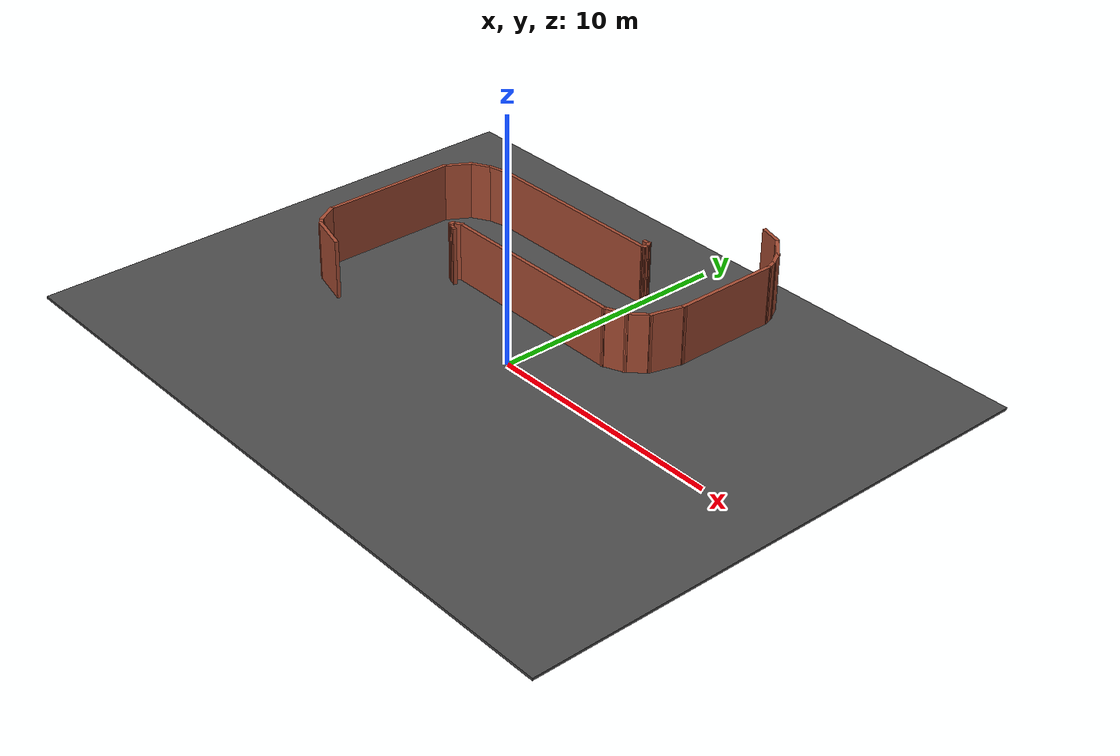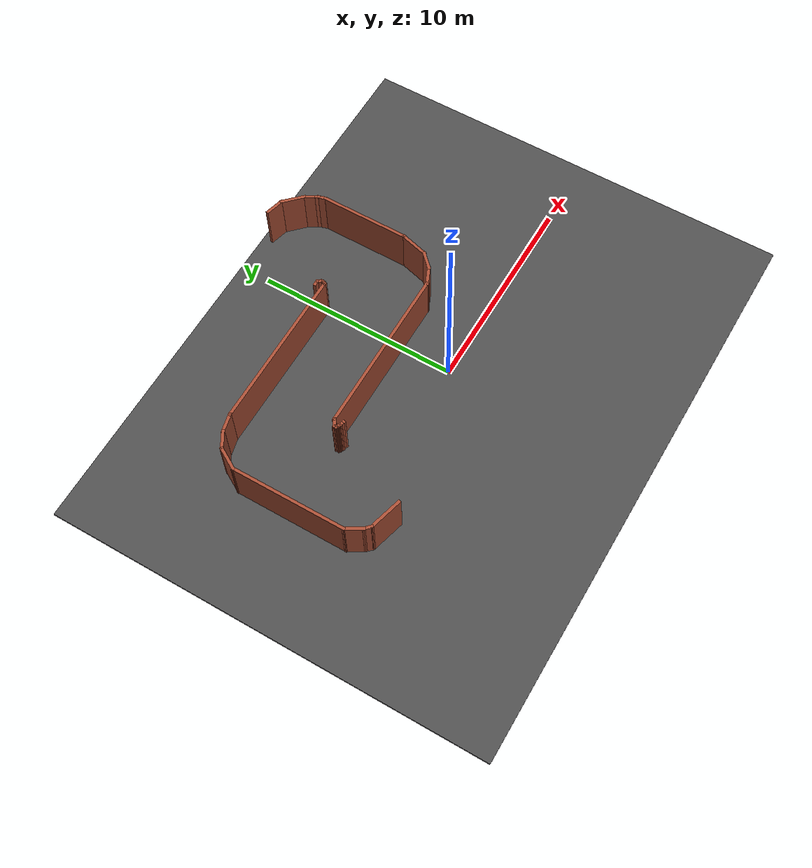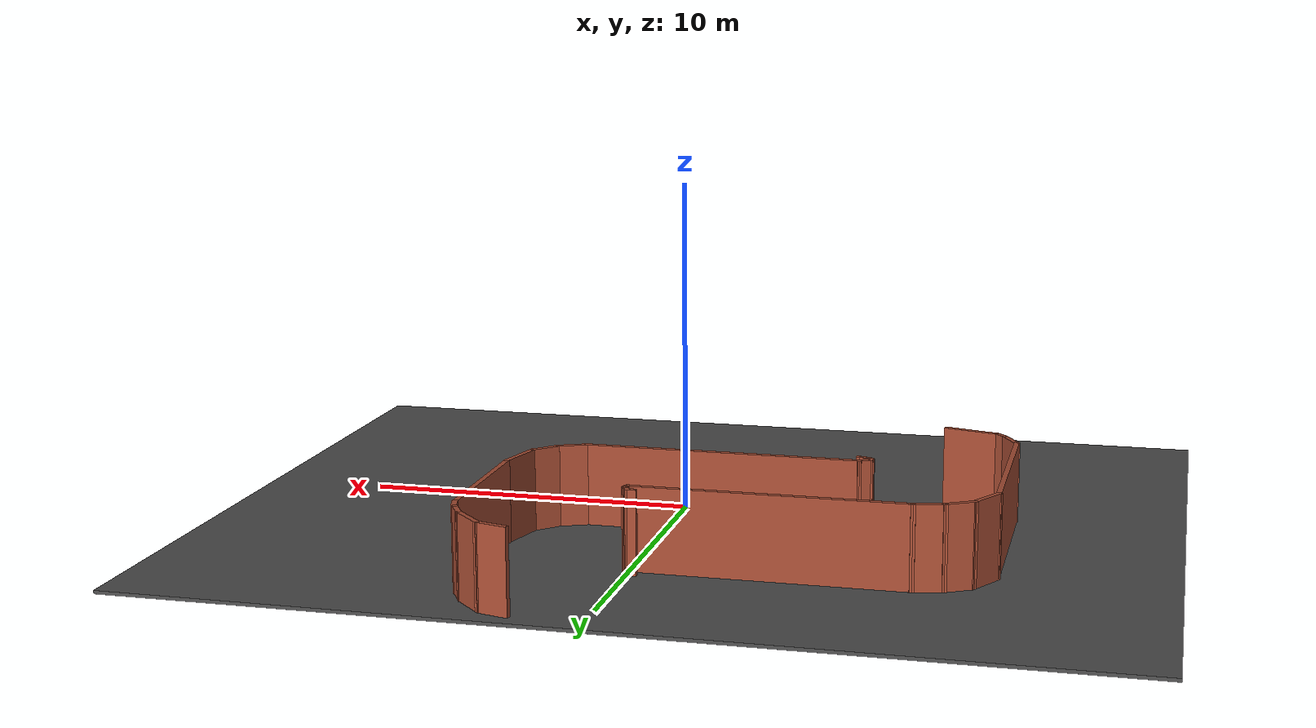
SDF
<sdf version="1.7">
 <world name="default">
  <model name="asphalt_plane">
   <static>1</static>
   <link name="link">
    <collision name="collision"><geometry><box><size>28.54 22.04 0.1</size></box></geometry></collision>
    <visual name="visual">
     <cast_shadows>0</cast_shadows>
     <geometry><box><size>28.54 22.04 0.1</size></box></geometry>
     <material>
      <script>
       <uri>model://asphalt_plane/materials/scripts</uri>
       <uri>model://asphalt_plane/materials/textures</uri>
       <name>vrc/asphalt</name>
      </script>
     </material>
    </visual>
   </link>
   <pose>-0.719505 0.551979 0 0 -0 0</pose>
  </model>
  <model name="Untitled_7">
   <pose>-2.94452 4.58094 0 0 -0 0</pose>
   <link name="Wall_0">
    <collision name="Wall_0_Collision">
     <geometry><box><size>8 0.15 2.5</size></box></geometry>
     <pose>0 0 1.25 0 -0 0</pose>
    </collision>
    <visual name="Wall_0_Visual">
     <pose>0 0 1.25 0 -0 0</pose>
     <geometry><box><size>8 0.15 2.5</size></box></geometry>
     <material>
      <script><uri>file://media/materials/scripts/gazebo.material</uri><name>Gazebo/Bricks</name></script>
      <ambient>1 1 1 1</ambient>
     </material>
     <meta><layer>0</layer></meta>
    </visual>
    <pose>-0.98603 2.05748 0 0 -0 0</pose>
   </link>
   <link name="Wall_10">
    <collision name="Wall_10_Collision">
     <geometry><box><size>0.25 0.15 2.5</size></box></geometry>
     <pose>0 0 1.25 0 -0 0</pose>
    </collision>
    <visual name="Wall_10_Visual">
     <pose>0 0 1.25 0 -0 0</pose>
     <geometry><box><size>0.25 0.15 2.5</size></box></geometry>
     <material>
      <script><uri>file://media/materials/scripts/gazebo.material</uri><name>Gazebo/Bricks</name></script>
      <ambient>1 1 1 1</ambient>
     </material>
     <meta><layer>0</layer></meta>
    </visual>
    <pose>2.73897 2.41729 0 0 -0 3.14159</pose>
   </link>
   <link name="Wall_12">
    <collision name="Wall_12_Collision">
     <geometry><box><size>4.5 0.15 2.5</size></box></geometry>
     <pose>0 0 1.25 0 -0 0</pose>
    </collision>
    <visual name="Wall_12_Visual">
     <pose>0 0 1.25 0 -0 0</pose>
     <geometry><box><size>4.5 0.15 2.5</size></box></geometry>
     <material>
      <script><uri>file://media/materials/scripts/gazebo.material</uri><name>Gazebo/Bricks</name></script>
      <ambient>1 1 1 1</ambient>
     </material>
     <meta><layer>0</layer></meta>
    </visual>
    <pose>7.04184 2.39412 0 0 -0 1.5708</pose>
   </link>
   <link name="Wall_16">
    <collision name="Wall_16_Collision">
     <geometry><box><size>0.5 0.15 2.5</size></box></geometry>
     <pose>0 0 1.25 0 -0 0</pose>
    </collision>
    <visual name="Wall_16_Visual">
     <pose>0 0 1.25 0 -0 0</pose>
     <geometry><box><size>0.5 0.15 2.5</size></box></geometry>
     <material>
      <script><uri>file://media/materials/scripts/gazebo.material</uri><name>Gazebo/Bricks</name></script>
      <ambient>1 1 1 1</ambient>
     </material>
     <meta><layer>0</layer></meta>
    </visual>
    <pose>6.99654 4.73816 0 0 -0 1.8326</pose>
   </link>
   <link name="Wall_18">
    <collision name="Wall_18_Collision">
     <geometry><box><size>0.25 0.15 2.5</size></box></geometry>
     <pose>0 0 1.25 0 -0 0</pose>
    </collision>
    <visual name="Wall_18_Visual">
     <pose>0 0 1.25 0 -0 0</pose>
     <geometry><box><size>0.25 0.15 2.5</size></box></geometry>
     <material>
      <script><uri>file://media/materials/scripts/gazebo.material</uri><name>Gazebo/Bricks</name></script>
      <ambient>1 1 1 1</ambient>
     </material>
     <meta><layer>0</layer></meta>
    </visual>
    <pose>6.92625 4.9505 0 0 -0 2.0944</pose>
   </link>
   <link name="Wall_19">
    <collision name="Wall_19_Collision">
     <geometry><box><size>0.75 0.15 2.5</size></box></geometry>
     <pose>0 0 1.25 0 -0 0</pose>
    </collision>
    <visual name="Wall_19_Visual">
     <pose>0 0 1.25 0 -0 0</pose>
     <geometry><box><size>0.75 0.15 2.5</size></box></geometry>
     <material>
      <script><uri>file://media/materials/scripts/gazebo.material</uri><name>Gazebo/Bricks</name></script>
      <ambient>1 1 1 1</ambient>
     </material>
     <meta><layer>0</layer></meta>
    </visual>
    <pose>6.75125 5.25361 0 0 -0 2.0944</pose>
   </link>
   <link name="Wall_20">
    <collision name="Wall_20_Collision">
     <geometry><box><size>1.25 0.15 2.5</size></box></geometry>
     <pose>0 0 1.25 0 -0 0</pose>
    </collision>
    <visual name="Wall_20_Visual">
     <pose>0 0 1.25 0 -0 0</pose>
     <geometry><box><size>1.25 0.15 2.5</size></box></geometry>
     <material>
      <script><uri>file://media/materials/scripts/gazebo.material</uri><name>Gazebo/Bricks</name></script>
      <ambient>1 1 1 1</ambient>
     </material>
     <meta><layer>0</layer></meta>
    </visual>
    <pose>6.21234 5.90232 0 0 -0 2.35619</pose>
   </link>
   <link name="Wall_21">
    <collision name="Wall_21_Collision">
     <geometry><box><size>1 0.15 2.5</size></box></geometry>
     <pose>0 0 1.25 0 -0 0</pose>
    </collision>
    <visual name="Wall_21_Visual">
     <pose>0 0 1.25 0 -0 0</pose>
     <geometry><box><size>1 0.15 2.5</size></box></geometry>
     <material>
      <script><uri>file://media/materials/scripts/gazebo.material</uri><name>Gazebo/Bricks</name></script>
      <ambient>1 1 1 1</ambient>
     </material>
     <meta><layer>0</layer></meta>
    </visual>
    <pose>5.41291 6.40123 0 0 -0 2.87979</pose>
   </link>
   <link name="Wall_23">
    <collision name="Wall_23_Collision">
     <geometry><box><size>1.5 0.15 2.5</size></box></geometry>
     <pose>0 0 1.25 0 -0 0</pose>
    </collision>
    <visual name="Wall_23_Visual">
     <pose>0 0 1.25 0 -0 0</pose>
     <geometry><box><size>1.5 0.15 2.5</size></box></geometry>
     <material>
      <script><uri>file://media/materials/scripts/gazebo.material</uri><name>Gazebo/Bricks</name></script>
      <ambient>1 1 1 1</ambient>
     </material>
     <meta><layer>0</layer></meta>
    </visual>
    <pose>6.86713 -0.432877 0 0 -0 -1.8326</pose>
   </link>
   <link name="Wall_24">
    <collision name="Wall_24_Collision">
     <geometry><box><size>1 0.15 2.5</size></box></geometry>
     <pose>0 0 1.25 0 -0 0</pose>
    </collision>
    <visual name="Wall_24_Visual">
     <pose>0 0 1.25 0 -0 0</pose>
     <geometry><box><size>1 0.15 2.5</size></box></geometry>
     <material>
      <script><uri>file://media/materials/scripts/gazebo.material</uri><name>Gazebo/Bricks</name></script>
      <ambient>1 1 1 1</ambient>
     </material>
     <meta><layer>0</layer></meta>
    </visual>
    <pose>6.39191 -1.3854 0 0 -0 -2.35619</pose>
   </link>
   <link name="Wall_25">
    <collision name="Wall_25_Collision">
     <geometry><box><size>1.01814 0.15 2.5</size></box></geometry>
     <pose>0 0 1.25 0 -0 0</pose>
    </collision>
    <visual name="Wall_25_Visual">
     <pose>0 0 1.25 0 -0 0</pose>
     <geometry><box><size>1.01814 0.15 2.5</size></box></geometry>
     <material>
      <script><uri>file://media/materials/scripts/gazebo.material</uri><name>Gazebo/Bricks</name></script>
      <ambient>1 1 1 1</ambient>
     </material>
     <meta><layer>0</layer></meta>
    </visual>
    <pose>5.69472 -1.86217 0 0 -0 -2.72346</pose>
   </link>
   <link name="Wall_27">
    <collision name="Wall_27_Collision">
     <geometry><box><size>5.75 0.15 2.5</size></box></geometry>
     <pose>0 0 1.25 0 -0 0</pose>
    </collision>
    <visual name="Wall_27_Visual">
     <pose>0 0 1.25 0 -0 0</pose>
     <geometry><box><size>5.75 0.15 2.5</size></box></geometry>
     <material>
      <script><uri>file://media/materials/scripts/gazebo.material</uri><name>Gazebo/Bricks</name></script>
      <ambient>1 1 1 1</ambient>
     </material>
     <meta><layer>0</layer></meta>
    </visual>
    <pose>-7.03124 -2.31351 0 0 -0 -1.5708</pose>
   </link>
   <link name="Wall_29">
    <collision name="Wall_29_Collision">
     <geometry><box><size>1.25 0.15 2.5</size></box></geometry>
     <pose>0 0 1.25 0 -0 0</pose>
    </collision>
    <visual name="Wall_29_Visual">
     <pose>0 0 1.25 0 -0 0</pose>
     <geometry><box><size>1.25 0.15 2.5</size></box></geometry>
     <material>
      <script><uri>file://media/materials/scripts/gazebo.material</uri><name>Gazebo/Bricks</name></script>
      <ambient>1 1 1 1</ambient>
     </material>
     <meta><layer>0</layer></meta>
    </visual>
    <pose>-6.75624 0.962805 0 0 -0 1.0472</pose>
   </link>
   <link name="Wall_3">
    <collision name="Wall_3_Collision">
     <geometry><box><size>8.25 0.15 2.5</size></box></geometry>
     <pose>0 0 1.25 0 -0 0</pose>
    </collision>
    <visual name="Wall_3_Visual">
     <pose>0 0 1.25 0 -0 0</pose>
     <geometry><box><size>8.25 0.15 2.5</size></box></geometry>
     <material>
      <script><uri>file://media/materials/scripts/gazebo.material</uri><name>Gazebo/Bricks</name></script>
      <ambient>1 1 1 1</ambient>
     </material>
     <meta><layer>0</layer></meta>
    </visual>
    <pose>1.24804 -2.03843 0 0 -0 0</pose>
   </link>
   <link name="Wall_30">
    <collision name="Wall_30_Collision">
     <geometry><box><size>1 0.15 2.5</size></box></geometry>
     <pose>0 0 1.25 0 -0 0</pose>
    </collision>
    <visual name="Wall_30_Visual">
     <pose>0 0 1.25 0 -0 0</pose>
     <geometry><box><size>1 0.15 2.5</size></box></geometry>
     <material>
      <script><uri>file://media/materials/scripts/gazebo.material</uri><name>Gazebo/Bricks</name></script>
      <ambient>1 1 1 1</ambient>
     </material>
     <meta><layer>0</layer></meta>
    </visual>
    <pose>-6.11318 1.65162 0 0 -0 0.523599</pose>
   </link>
   <link name="Wall_31">
    <collision name="Wall_31_Collision">
     <geometry><box><size>1.00621 0.15 2.5</size></box></geometry>
     <pose>0 0 1.25 0 -0 0</pose>
    </collision>
    <visual name="Wall_31_Visual">
     <pose>0 0 1.25 0 -0 0</pose>
     <geometry><box><size>1.00621 0.15 2.5</size></box></geometry>
     <material>
      <script><uri>file://media/materials/scripts/gazebo.material</uri><name>Gazebo/Bricks</name></script>
      <ambient>1 1 1 1</ambient>
     </material>
     <meta><layer>0</layer></meta>
    </visual>
    <pose>-5.32808 1.9608 0 0 -0 0.227803</pose>
   </link>
   <link name="Wall_33">
    <collision name="Wall_33_Collision">
     <geometry><box><size>1 0.15 2.5</size></box></geometry>
     <pose>0 0 1.25 0 -0 0</pose>
    </collision>
    <visual name="Wall_33_Visual">
     <pose>0 0 1.25 0 -0 0</pose>
     <geometry><box><size>1 0.15 2.5</size></box></geometry>
     <material>
      <script><uri>file://media/materials/scripts/gazebo.material</uri><name>Gazebo/Bricks</name></script>
      <ambient>1 1 1 1</ambient>
     </material>
     <meta><layer>0</layer></meta>
    </visual>
    <pose>-6.81874 -5.48157 0 0 -0 -1.0472</pose>
   </link>
   <link name="Wall_34">
    <collision name="Wall_34_Collision">
     <geometry><box><size>0.5 0.15 2.5</size></box></geometry>
     <pose>0 0 1.25 0 -0 0</pose>
    </collision>
    <visual name="Wall_34_Visual">
     <pose>0 0 1.25 0 -0 0</pose>
     <geometry><box><size>0.5 0.15 2.5</size></box></geometry>
     <material>
      <script><uri>file://media/materials/scripts/gazebo.material</uri><name>Gazebo/Bricks</name></script>
      <ambient>1 1 1 1</ambient>
     </material>
     <meta><layer>0</layer></meta>
    </visual>
    <pose>-6.4825 -5.97337 0 0 -0 -0.785398</pose>
   </link>
   <link name="Wall_36">
    <collision name="Wall_36_Collision">
     <geometry><box><size>1.75 0.15 2.5</size></box></geometry>
     <pose>0 0 1.25 0 -0 0</pose>
    </collision>
    <visual name="Wall_36_Visual">
     <pose>0 0 1.25 0 -0 0</pose>
     <geometry><box><size>1.75 0.15 2.5</size></box></geometry>
     <material>
      <script><uri>file://media/materials/scripts/gazebo.material</uri><name>Gazebo/Bricks</name></script>
      <ambient>1 1 1 1</ambient>
     </material>
     <meta><layer>0</layer></meta>
    </visual>
    <pose>-5.58601 -6.30417 0 0 -0 -0.261799</pose>
   </link>
   <link name="Wall_39">
    <collision name="Wall_39_Collision">
     <geometry><box><size>0.5 0.15 2.5</size></box></geometry>
     <pose>0 0 1.25 0 -0 0</pose>
    </collision>
    <visual name="Wall_39_Visual">
     <pose>0 0 1.25 0 -0 0</pose>
     <geometry><box><size>0.5 0.15 2.5</size></box></geometry>
     <material>
      <script><uri>file://media/materials/scripts/gazebo.material</uri><name>Gazebo/Bricks</name></script>
      <ambient>1 1 1 1</ambient>
     </material>
     <meta><layer>0</layer></meta>
    </visual>
    <pose>-2.95351 -2.12593 0 0 -0 -2.61799</pose>
   </link>
   <link name="Wall_40">
    <collision name="Wall_40_Collision">
     <geometry><box><size>0.25 0.15 2.5</size></box></geometry>
     <pose>0 0 1.25 0 -0 0</pose>
    </collision>
    <visual name="Wall_40_Visual">
     <pose>0 0 1.25 0 -0 0</pose>
     <geometry><box><size>0.25 0.15 2.5</size></box></geometry>
     <material>
      <script><uri>file://media/materials/scripts/gazebo.material</uri><name>Gazebo/Bricks</name></script>
      <ambient>1 1 1 1</ambient>
     </material>
     <meta><layer>0</layer></meta>
    </visual>
    <pose>-3.10507 -2.26343 0 0 -0 -1.5708</pose>
   </link>
   <link name="Wall_41">
    <collision name="Wall_41_Collision">
     <geometry><box><size>0.25 0.15 2.5</size></box></geometry>
     <pose>0 0 1.25 0 -0 0</pose>
    </collision>
    <visual name="Wall_41_Visual">
     <pose>0 0 1.25 0 -0 0</pose>
     <geometry><box><size>0.25 0.15 2.5</size></box></geometry>
     <material>
      <script><uri>file://media/materials/scripts/gazebo.material</uri><name>Gazebo/Bricks</name></script>
      <ambient>1 1 1 1</ambient>
     </material>
     <meta><layer>0</layer></meta>
    </visual>
    <pose>-3.06176 -2.33843 0 0 -0 -0.523599</pose>
   </link>
   <link name="Wall_42">
    <collision name="Wall_42_Collision">
     <geometry><box><size>0.15 0.15 2.5</size></box></geometry>
     <pose>0 0 1.25 0 -0 0</pose>
    </collision>
    <visual name="Wall_42_Visual">
     <pose>0 0 1.25 0 -0 0</pose>
     <geometry><box><size>0.15 0.15 2.5</size></box></geometry>
     <material>
      <script><uri>file://media/materials/scripts/gazebo.material</uri><name>Gazebo/Bricks</name></script>
      <ambient>1 1 1 1</ambient>
     </material>
     <meta><layer>0</layer></meta>
    </visual>
    <pose>-3.01846 -2.36343 0 0 -0 0</pose>
   </link>
   <link name="Wall_44">
    <collision name="Wall_44_Collision">
     <geometry><box><size>0.25 0.15 2.5</size></box></geometry>
     <pose>0 0 1.25 0 -0 0</pose>
    </collision>
    <visual name="Wall_44_Visual">
     <pose>0 0 1.25 0 -0 0</pose>
     <geometry><box><size>0.25 0.15 2.5</size></box></geometry>
     <material>
      <script><uri>file://media/materials/scripts/gazebo.material</uri><name>Gazebo/Bricks</name></script>
      <ambient>1 1 1 1</ambient>
     </material>
     <meta><layer>0</layer></meta>
    </visual>
    <pose>-2.97516 -2.38843 0 0 -0 -0.523599</pose>
   </link>
   <link name="Wall_45">
    <collision name="Wall_45_Collision">
     <geometry><box><size>0.25 0.15 2.5</size></box></geometry>
     <pose>0 0 1.25 0 -0 0</pose>
    </collision>
    <visual name="Wall_45_Visual">
     <pose>0 0 1.25 0 -0 0</pose>
     <geometry><box><size>0.25 0.15 2.5</size></box></geometry>
     <material>
      <script><uri>file://media/materials/scripts/gazebo.material</uri><name>Gazebo/Bricks</name></script>
      <ambient>1 1 1 1</ambient>
     </material>
     <meta><layer>0</layer></meta>
    </visual>
    <pose>-2.88356 -2.42637 0 0 -0 -0.261799</pose>
   </link>
   <link name="Wall_46">
    <collision name="Wall_46_Collision">
     <geometry><box><size>0.25 0.15 2.5</size></box></geometry>
     <pose>0 0 1.25 0 -0 0</pose>
    </collision>
    <visual name="Wall_46_Visual">
     <pose>0 0 1.25 0 -0 0</pose>
     <geometry><box><size>0.25 0.15 2.5</size></box></geometry>
     <material>
      <script><uri>file://media/materials/scripts/gazebo.material</uri><name>Gazebo/Bricks</name></script>
      <ambient>1 1 1 1</ambient>
     </material>
     <meta><layer>0</layer></meta>
    </visual>
    <pose>-2.78697 -2.45225 0 0 -0 -0.261799</pose>
   </link>
   <link name="Wall_5">
    <collision name="Wall_5_Collision">
     <geometry><box><size>0.25 0.15 2.5</size></box></geometry>
     <pose>0 0 1.25 0 -0 0</pose>
    </collision>
    <visual name="Wall_5_Visual">
     <pose>0 0 1.25 0 -0 0</pose>
     <geometry><box><size>0.25 0.15 2.5</size></box></geometry>
     <material>
      <script><uri>file://media/materials/scripts/gazebo.material</uri><name>Gazebo/Bricks</name></script>
      <ambient>1 1 1 1</ambient>
     </material>
     <meta><layer>0</layer></meta>
    </visual>
    <pose>2.96397 2.10078 0 0 -0 1.0472</pose>
   </link>
   <link name="Wall_6">
    <collision name="Wall_6_Collision">
     <geometry><box><size>0.25 0.15 2.5</size></box></geometry>
     <pose>0 0 1.25 0 -0 0</pose>
    </collision>
    <visual name="Wall_6_Visual">
     <pose>0 0 1.25 0 -0 0</pose>
     <geometry><box><size>0.25 0.15 2.5</size></box></geometry>
     <material>
      <script><uri>file://media/materials/scripts/gazebo.material</uri><name>Gazebo/Bricks</name></script>
      <ambient>1 1 1 1</ambient>
     </material>
     <meta><layer>0</layer></meta>
    </visual>
    <pose>2.98897 2.19408 0 0 -0 1.5708</pose>
   </link>
   <link name="Wall_7">
    <collision name="Wall_7_Collision">
     <geometry><box><size>0.25 0.15 2.5</size></box></geometry>
     <pose>0 0 1.25 0 -0 0</pose>
    </collision>
    <visual name="Wall_7_Visual">
     <pose>0 0 1.25 0 -0 0</pose>
     <geometry><box><size>0.25 0.15 2.5</size></box></geometry>
     <material>
      <script><uri>file://media/materials/scripts/gazebo.material</uri><name>Gazebo/Bricks</name></script>
      <ambient>1 1 1 1</ambient>
     </material>
     <meta><layer>0</layer></meta>
    </visual>
    <pose>2.96397 2.28739 0 0 -0 2.0944</pose>
   </link>
   <link name="Wall_8">
    <collision name="Wall_8_Collision">
     <geometry><box><size>0.25 0.15 2.5</size></box></geometry>
     <pose>0 0 1.25 0 -0 0</pose>
    </collision>
    <visual name="Wall_8_Visual">
     <pose>0 0 1.25 0 -0 0</pose>
     <geometry><box><size>0.25 0.15 2.5</size></box></geometry>
     <material>
      <script><uri>file://media/materials/scripts/gazebo.material</uri><name>Gazebo/Bricks</name></script>
      <ambient>1 1 1 1</ambient>
     </material>
     <meta><layer>0</layer></meta>
    </visual>
    <pose>2.91397 2.37399 0 0 -0 2.0944</pose>
   </link>
   <static>1</static>
  </model>
 </world>
</sdf>
